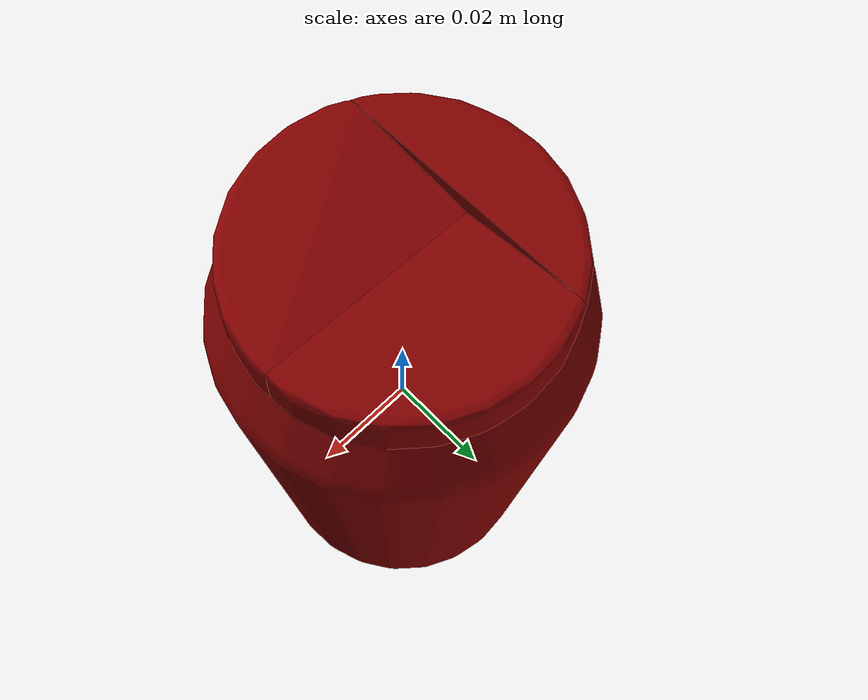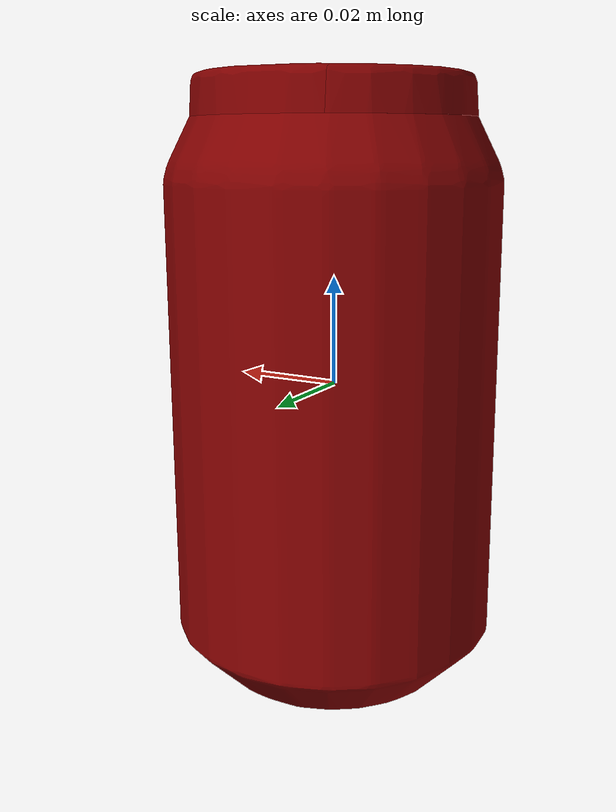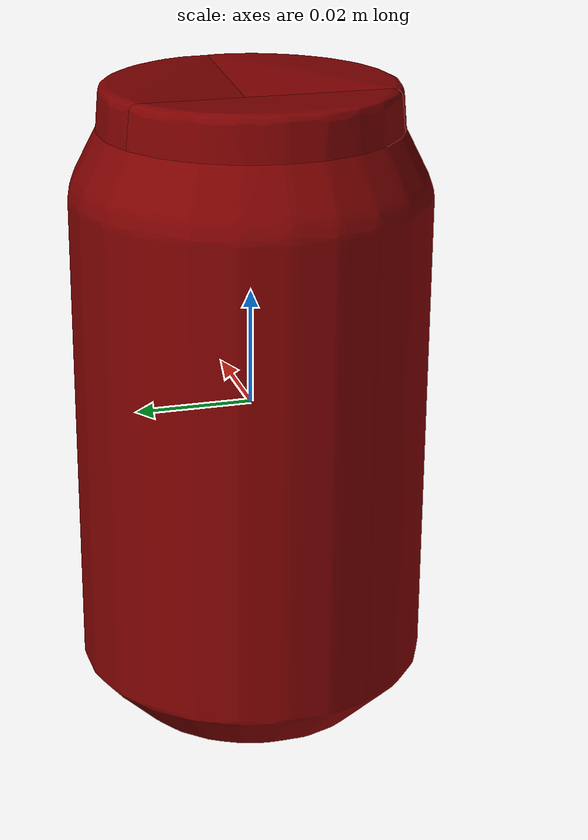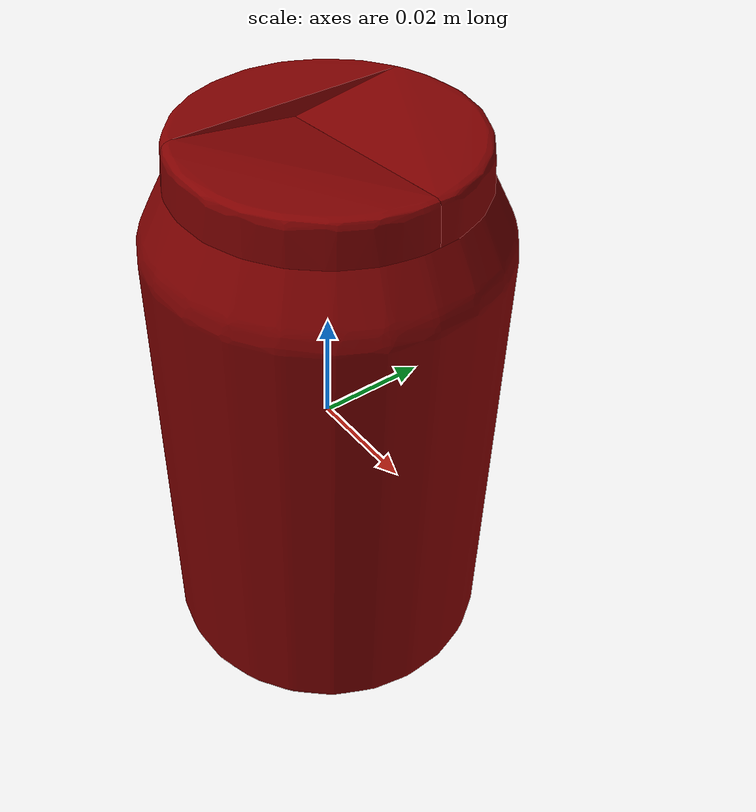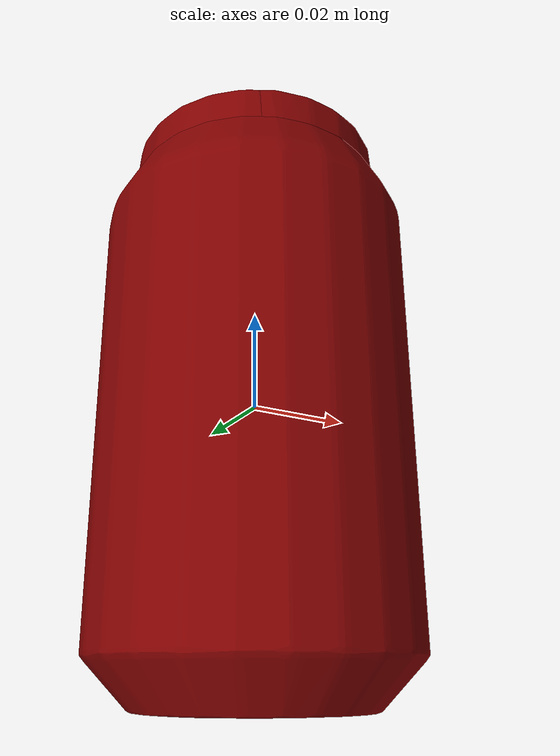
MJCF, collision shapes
<mujoco model="can_24">
  <asset>
    <mesh file="visual/model_normalized_0.obj" name="model_normalized_0_vis" scale="0.11 0.11 0.11" refquat="1.0 0.0 0.0 0.0"/>
    <texture type="2d" name="image0" file="visual/image0.png"/>
    <material name="Material_001" texture="image0" specular="0.5" shininess="0.25"/>
    <mesh file="collision/collision_mesh_collision_0.obj" name="can_collision_mesh_0" scale="0.11 0.11 0.11" refquat="1.0 0.0 0.0 0.0"/>
    <mesh file="collision/collision_mesh_collision_1.obj" name="can_collision_mesh_1" scale="0.11 0.11 0.11" refquat="1.0 0.0 0.0 0.0"/>
    <mesh file="collision/collision_mesh_collision_2.obj" name="can_collision_mesh_2" scale="0.11 0.11 0.11" refquat="1.0 0.0 0.0 0.0"/>
    <mesh file="collision/collision_mesh_collision_3.obj" name="can_collision_mesh_3" scale="0.11 0.11 0.11" refquat="1.0 0.0 0.0 0.0"/>
  </asset>
  <default>
    <default class="region">
      <geom group="1" conaffinity="0" contype="0" rgba="0 1 0 0"/>
    </default>
    <default class="collision">
      <geom group="0" rgba="0.5 0 0 0.5" density="1000.0"/>
    </default>
  </default>
  <worldbody>
    <body>
      <body name="object">
        <geom solimp="0.998 0.998 0.001" solref="0.001 1" density="100" friction="0.95 0.3 0.1" type="mesh" mesh="model_normalized_0_vis" conaffinity="0" contype="0" group="1" material="Material_001"/>
        <geom class="region" name="reg_bbox" type="box" pos="-1.319999999915833e-08 1.319999999915833e-08 0.00010112739999999898" size="0.0301682766 0.0301739812 0.05547600299999999"/>
        <geom mesh="can_collision_mesh_0" type="mesh" class="collision"/>
        <geom mesh="can_collision_mesh_1" type="mesh" class="collision"/>
        <geom mesh="can_collision_mesh_2" type="mesh" class="collision"/>
        <geom mesh="can_collision_mesh_3" type="mesh" class="collision"/>
      </body>
    </body>
  </worldbody>
</mujoco>
